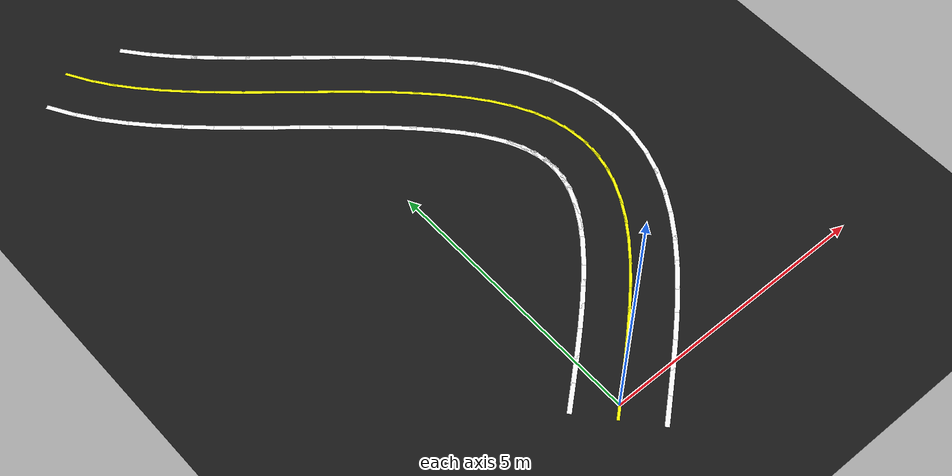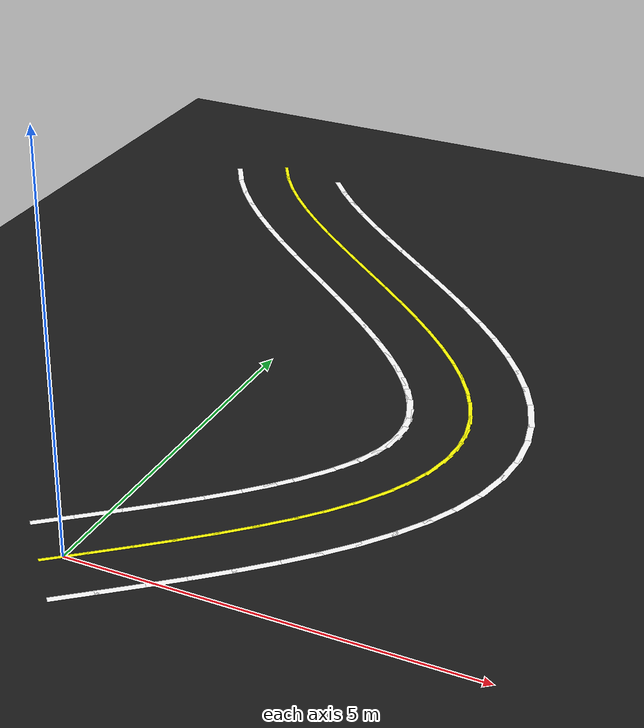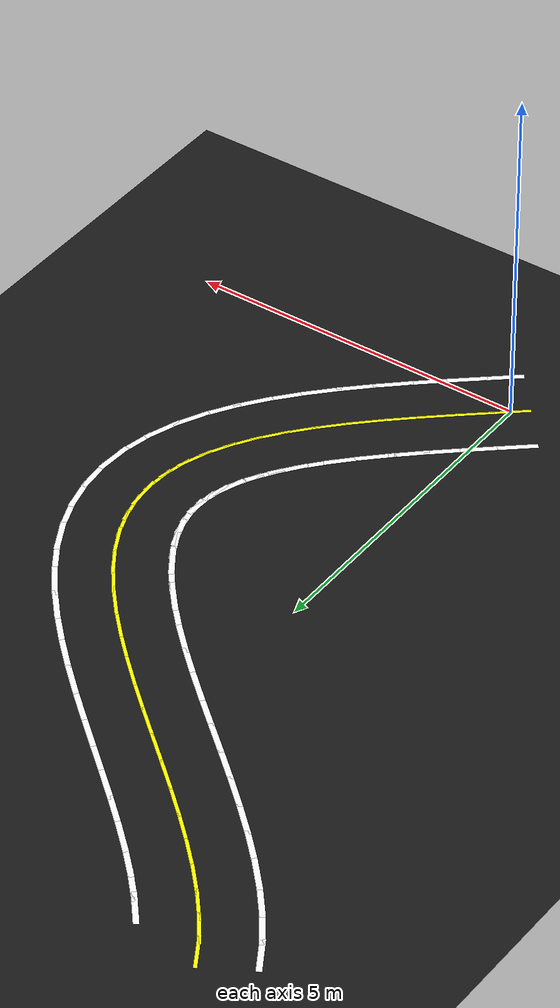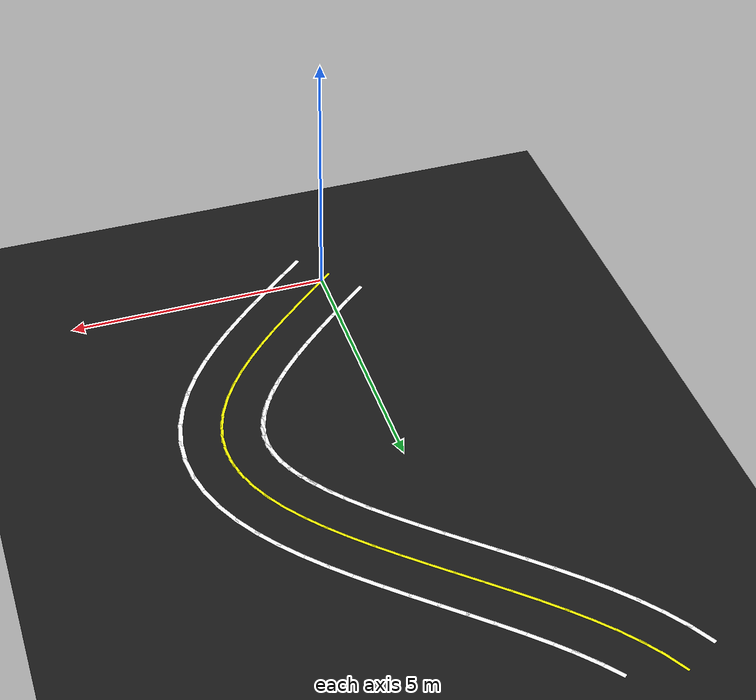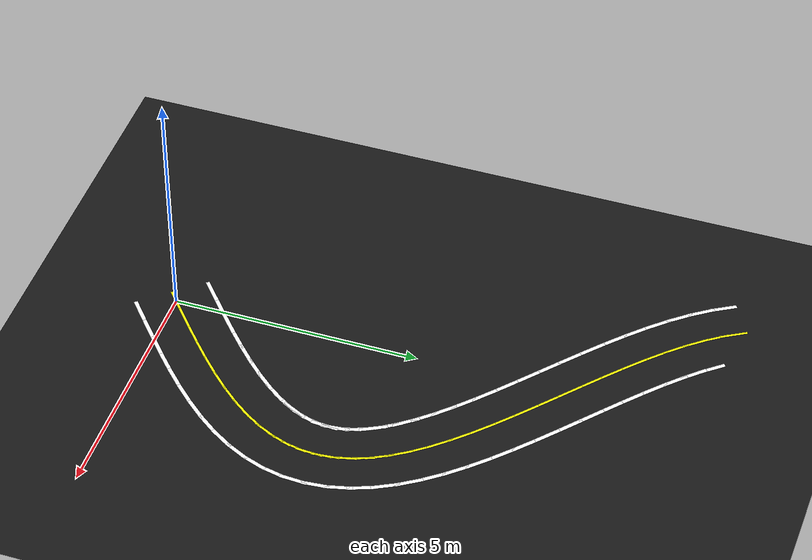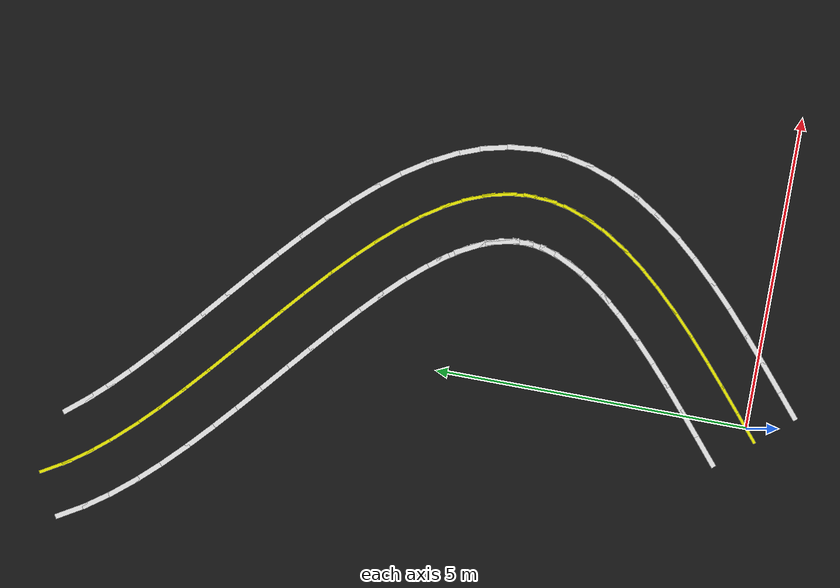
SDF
<sdf version="1.6">
 <world name="double_s_lane_world">
  <model name="ground">
   <static>true</static>
   <link name="link">
    <visual name="v">
     <geometry><plane><normal>0 0 1</normal><size>100 100</size></plane></geometry>
     <material><ambient>0.10 0.10 0.10 1</ambient><diffuse>0.10 0.10 0.10 1</diffuse></material>
    </visual>
    <collision name="c"><geometry><plane><normal>0 0 1</normal><size>100 100</size></plane></geometry></collision>
   </link>
  </model>
  <model name="seg_0000">
   <static>true</static>
   <pose>-0.4853 0.5718 0.002 0 0 0.7038</pose>
   <link name="link">
    <visual name="v">
     <geometry><box><size>0.550 0.080 0.0020</size></box></geometry>
     <material><ambient>1 1 1 1</ambient><diffuse>1 1 1 1</diffuse></material>
    </visual>
   </link>
  </model>
  <model name="seg_0001">
   <static>true</static>
   <pose>0.4853 -0.5718 0.002 0 0 0.7038</pose>
   <link name="link">
    <visual name="v">
     <geometry><box><size>0.550 0.080 0.0020</size></box></geometry>
     <material><ambient>1 1 1 1</ambient><diffuse>1 1 1 1</diffuse></material>
    </visual>
   </link>
  </model>
  <model name="seg_0002">
   <static>true</static>
   <pose>0.0000 0.0000 0.002 0 0 0.7038</pose>
   <link name="link">
    <visual name="v">
     <geometry><box><size>0.550 0.050 0.0020</size></box></geometry>
     <material><ambient>1 1 0 1</ambient><diffuse>1 1 0 1</diffuse></material>
    </visual>
   </link>
  </model>
  <model name="seg_0003">
   <static>true</static>
   <pose>-0.1078 0.8931 0.002 0 0 0.7078</pose>
   <link name="link">
    <visual name="v">
     <geometry><box><size>0.550 0.080 0.0020</size></box></geometry>
     <material><ambient>1 1 1 1</ambient><diffuse>1 1 1 1</diffuse></material>
    </visual>
   </link>
  </model>
  <model name="seg_0004">
   <static>true</static>
   <pose>0.8674 -0.2466 0.002 0 0 0.7078</pose>
   <link name="link">
    <visual name="v">
     <geometry><box><size>0.550 0.080 0.0020</size></box></geometry>
     <material><ambient>1 1 1 1</ambient><diffuse>1 1 1 1</diffuse></material>
    </visual>
   </link>
  </model>
  <model name="seg_0005">
   <static>true</static>
   <pose>0.3798 0.3232 0.002 0 0 0.7078</pose>
   <link name="link">
    <visual name="v">
     <geometry><box><size>0.550 0.050 0.0020</size></box></geometry>
     <material><ambient>1 1 0 1</ambient><diffuse>1 1 0 1</diffuse></material>
    </visual>
   </link>
  </model>
  <model name="seg_0006">
   <static>true</static>
   <pose>0.2589 1.2104 0.002 0 0 0.7199</pose>
   <link name="link">
    <visual name="v">
     <geometry><box><size>0.550 0.080 0.0020</size></box></geometry>
     <material><ambient>1 1 1 1</ambient><diffuse>1 1 1 1</diffuse></material>
    </visual>
   </link>
  </model>
  <model name="seg_0007">
   <static>true</static>
   <pose>1.2479 0.0826 0.002 0 0 0.7199</pose>
   <link name="link">
    <visual name="v">
     <geometry><box><size>0.550 0.080 0.0020</size></box></geometry>
     <material><ambient>1 1 1 1</ambient><diffuse>1 1 1 1</diffuse></material>
    </visual>
   </link>
  </model>
  <model name="seg_0008">
   <static>true</static>
   <pose>0.7534 0.6465 0.002 0 0 0.7199</pose>
   <link name="link">
    <visual name="v">
     <geometry><box><size>0.550 0.050 0.0020</size></box></geometry>
     <material><ambient>1 1 0 1</ambient><diffuse>1 1 0 1</diffuse></material>
    </visual>
   </link>
  </model>
  <model name="seg_0009">
   <static>true</static>
   <pose>0.6089 1.5232 0.002 0 0 0.7407</pose>
   <link name="link">
    <visual name="v">
     <geometry><box><size>0.550 0.080 0.0020</size></box></geometry>
     <material><ambient>1 1 1 1</ambient><diffuse>1 1 1 1</diffuse></material>
    </visual>
   </link>
  </model>
  <model name="seg_0010">
   <static>true</static>
   <pose>1.6211 0.4162 0.002 0 0 0.7407</pose>
   <link name="link">
    <visual name="v">
     <geometry><box><size>0.550 0.080 0.0020</size></box></geometry>
     <material><ambient>1 1 1 1</ambient><diffuse>1 1 1 1</diffuse></material>
    </visual>
   </link>
  </model>
  <model name="seg_0011">
   <static>true</static>
   <pose>1.1150 0.9697 0.002 0 0 0.7407</pose>
   <link name="link">
    <visual name="v">
     <geometry><box><size>0.550 0.050 0.0020</size></box></geometry>
     <material><ambient>1 1 0 1</ambient><diffuse>1 1 0 1</diffuse></material>
    </visual>
   </link>
  </model>
  <model name="seg_0012">
   <static>true</static>
   <pose>0.9360 1.8309 0.002 0 0 0.7709</pose>
   <link name="link">
    <visual name="v">
     <geometry><box><size>0.550 0.080 0.0020</size></box></geometry>
     <material><ambient>1 1 1 1</ambient><diffuse>1 1 1 1</diffuse></material>
    </visual>
   </link>
  </model>
  <model name="seg_0013">
   <static>true</static>
   <pose>1.9812 0.7550 0.002 0 0 0.7709</pose>
   <link name="link">
    <visual name="v">
     <geometry><box><size>0.550 0.080 0.0020</size></box></geometry>
     <material><ambient>1 1 1 1</ambient><diffuse>1 1 1 1</diffuse></material>
    </visual>
   </link>
  </model>
  <model name="seg_0014">
   <static>true</static>
   <pose>1.4586 1.2929 0.002 0 0 0.7709</pose>
   <link name="link">
    <visual name="v">
     <geometry><box><size>0.550 0.050 0.0020</size></box></geometry>
     <material><ambient>1 1 0 1</ambient><diffuse>1 1 0 1</diffuse></material>
    </visual>
   </link>
  </model>
  <model name="seg_0015">
   <static>true</static>
   <pose>1.2346 2.1323 0.002 0 0 0.8117</pose>
   <link name="link">
    <visual name="v">
     <geometry><box><size>0.550 0.080 0.0020</size></box></geometry>
     <material><ambient>1 1 1 1</ambient><diffuse>1 1 1 1</diffuse></material>
    </visual>
   </link>
  </model>
  <model name="seg_0016">
   <static>true</static>
   <pose>2.3228 1.1000 0.002 0 0 0.8117</pose>
   <link name="link">
    <visual name="v">
     <geometry><box><size>0.550 0.080 0.0020</size></box></geometry>
     <material><ambient>1 1 1 1</ambient><diffuse>1 1 1 1</diffuse></material>
    </visual>
   </link>
  </model>
  <model name="seg_0017">
   <static>true</static>
   <pose>1.7787 1.6162 0.002 0 0 0.8117</pose>
   <link name="link">
    <visual name="v">
     <geometry><box><size>0.550 0.050 0.0020</size></box></geometry>
     <material><ambient>1 1 0 1</ambient><diffuse>1 1 0 1</diffuse></material>
    </visual>
   </link>
  </model>
  <model name="seg_0018">
   <static>true</static>
   <pose>1.4995 2.4260 0.002 0 0 0.8648</pose>
   <link name="link">
    <visual name="v">
     <geometry><box><size>0.550 0.080 0.0020</size></box></geometry>
     <material><ambient>1 1 1 1</ambient><diffuse>1 1 1 1</diffuse></material>
    </visual>
   </link>
  </model>
  <model name="seg_0019">
   <static>true</static>
   <pose>2.6410 1.4528 0.002 0 0 0.8648</pose>
   <link name="link">
    <visual name="v">
     <geometry><box><size>0.550 0.080 0.0020</size></box></geometry>
     <material><ambient>1 1 1 1</ambient><diffuse>1 1 1 1</diffuse></material>
    </visual>
   </link>
  </model>
  <model name="seg_0020">
   <static>true</static>
   <pose>2.0702 1.9394 0.002 0 0 0.8648</pose>
   <link name="link">
    <visual name="v">
     <geometry><box><size>0.550 0.050 0.0020</size></box></geometry>
     <material><ambient>1 1 0 1</ambient><diffuse>1 1 0 1</diffuse></material>
    </visual>
   </link>
  </model>
  <model name="seg_0021">
   <static>true</static>
   <pose>1.7264 2.7099 0.002 0 0 0.9319</pose>
   <link name="link">
    <visual name="v">
     <geometry><box><size>0.550 0.080 0.0020</size></box></geometry>
     <material><ambient>1 1 1 1</ambient><diffuse>1 1 1 1</diffuse></material>
    </visual>
   </link>
  </model>
  <model name="seg_0022">
   <static>true</static>
   <pose>2.9305 1.8154 0.002 0 0 0.9319</pose>
   <link name="link">
    <visual name="v">
     <geometry><box><size>0.550 0.080 0.0020</size></box></geometry>
     <material><ambient>1 1 1 1</ambient><diffuse>1 1 1 1</diffuse></material>
    </visual>
   </link>
  </model>
  <model name="seg_0023">
   <static>true</static>
   <pose>2.3284 2.2626 0.002 0 0 0.9319</pose>
   <link name="link">
    <visual name="v">
     <geometry><box><size>0.550 0.050 0.0020</size></box></geometry>
     <material><ambient>1 1 0 1</ambient><diffuse>1 1 0 1</diffuse></material>
    </visual>
   </link>
  </model>
  <model name="seg_0024">
   <static>true</static>
   <pose>1.9121 2.9816 0.002 0 0 1.0150</pose>
   <link name="link">
    <visual name="v">
     <geometry><box><size>0.550 0.080 0.0020</size></box></geometry>
     <material><ambient>1 1 1 1</ambient><diffuse>1 1 1 1</diffuse></material>
    </visual>
   </link>
  </model>
  <model name="seg_0025">
   <static>true</static>
   <pose>3.1863 2.1901 0.002 0 0 1.0150</pose>
   <link name="link">
    <visual name="v">
     <geometry><box><size>0.550 0.080 0.0020</size></box></geometry>
     <material><ambient>1 1 1 1</ambient><diffuse>1 1 1 1</diffuse></material>
    </visual>
   </link>
  </model>
  <model name="seg_0026">
   <static>true</static>
   <pose>2.5492 2.5859 0.002 0 0 1.0150</pose>
   <link name="link">
    <visual name="v">
     <geometry><box><size>0.550 0.050 0.0020</size></box></geometry>
     <material><ambient>1 1 0 1</ambient><diffuse>1 1 0 1</diffuse></material>
    </visual>
   </link>
  </model>
  <model name="seg_0027">
   <static>true</static>
   <pose>2.0552 3.2388 0.002 0 0 1.1157</pose>
   <link name="link">
    <visual name="v">
     <geometry><box><size>0.550 0.080 0.0020</size></box></geometry>
     <material><ambient>1 1 1 1</ambient><diffuse>1 1 1 1</diffuse></material>
    </visual>
   </link>
  </model>
  <model name="seg_0028">
   <static>true</static>
   <pose>3.4025 2.5794 0.002 0 0 1.1157</pose>
   <link name="link">
    <visual name="v">
     <geometry><box><size>0.550 0.080 0.0020</size></box></geometry>
     <material><ambient>1 1 1 1</ambient><diffuse>1 1 1 1</diffuse></material>
    </visual>
   </link>
  </model>
  <model name="seg_0029">
   <static>true</static>
   <pose>2.7289 2.9091 0.002 0 0 1.1157</pose>
   <link name="link">
    <visual name="v">
     <geometry><box><size>0.550 0.050 0.0020</size></box></geometry>
     <material><ambient>1 1 0 1</ambient><diffuse>1 1 0 1</diffuse></material>
    </visual>
   </link>
  </model>
  <model name="seg_0030">
   <static>true</static>
   <pose>2.1568 3.4800 0.002 0 0 1.2343</pose>
   <link name="link">
    <visual name="v">
     <geometry><box><size>0.550 0.080 0.0020</size></box></geometry>
     <material><ambient>1 1 1 1</ambient><diffuse>1 1 1 1</diffuse></material>
    </visual>
   </link>
  </model>
  <model name="seg_0031">
   <static>true</static>
   <pose>3.5726 2.9847 0.002 0 0 1.2343</pose>
   <link name="link">
    <visual name="v">
     <geometry><box><size>0.550 0.080 0.0020</size></box></geometry>
     <material><ambient>1 1 1 1</ambient><diffuse>1 1 1 1</diffuse></material>
    </visual>
   </link>
  </model>
  <model name="seg_0032">
   <static>true</static>
   <pose>2.8647 3.2323 0.002 0 0 1.2343</pose>
   <link name="link">
    <visual name="v">
     <geometry><box><size>0.550 0.050 0.0020</size></box></geometry>
     <material><ambient>1 1 0 1</ambient><diffuse>1 1 0 1</diffuse></material>
    </visual>
   </link>
  </model>
  <model name="seg_0033">
   <static>true</static>
   <pose>2.2196 3.7059 0.002 0 0 1.3690</pose>
   <link name="link">
    <visual name="v">
     <geometry><box><size>0.550 0.080 0.0020</size></box></geometry>
     <material><ambient>1 1 1 1</ambient><diffuse>1 1 1 1</diffuse></material>
    </visual>
   </link>
  </model>
  <model name="seg_0034">
   <static>true</static>
   <pose>3.6892 3.4052 0.002 0 0 1.3690</pose>
   <link name="link">
    <visual name="v">
     <geometry><box><size>0.550 0.080 0.0020</size></box></geometry>
     <material><ambient>1 1 1 1</ambient><diffuse>1 1 1 1</diffuse></material>
    </visual>
   </link>
  </model>
  <model name="seg_0035">
   <static>true</static>
   <pose>2.9544 3.5556 0.002 0 0 1.3690</pose>
   <link name="link">
    <visual name="v">
     <geometry><box><size>0.550 0.050 0.0020</size></box></geometry>
     <material><ambient>1 1 0 1</ambient><diffuse>1 1 0 1</diffuse></material>
    </visual>
   </link>
  </model>
  <model name="seg_0036">
   <static>true</static>
   <pose>2.2478 3.9208 0.002 0 0 1.5148</pose>
   <link name="link">
    <visual name="v">
     <geometry><box><size>0.550 0.080 0.0020</size></box></geometry>
     <material><ambient>1 1 1 1</ambient><diffuse>1 1 1 1</diffuse></material>
    </visual>
   </link>
  </model>
  <model name="seg_0037">
   <static>true</static>
   <pose>3.7454 3.8368 0.002 0 0 1.5148</pose>
   <link name="link">
    <visual name="v">
     <geometry><box><size>0.550 0.080 0.0020</size></box></geometry>
     <material><ambient>1 1 1 1</ambient><diffuse>1 1 1 1</diffuse></material>
    </visual>
   </link>
  </model>
  <model name="seg_0038">
   <static>true</static>
   <pose>2.9966 3.8788 0.002 0 0 1.5148</pose>
   <link name="link">
    <visual name="v">
     <geometry><box><size>0.550 0.050 0.0020</size></box></geometry>
     <material><ambient>1 1 0 1</ambient><diffuse>1 1 0 1</diffuse></material>
    </visual>
   </link>
  </model>
  <model name="seg_0039">
   <static>true</static>
   <pose>2.2438 4.1323 0.002 0 0 1.6639</pose>
   <link name="link">
    <visual name="v">
     <geometry><box><size>0.550 0.080 0.0020</size></box></geometry>
     <material><ambient>1 1 1 1</ambient><diffuse>1 1 1 1</diffuse></material>
    </visual>
   </link>
  </model>
  <model name="seg_0040">
   <static>true</static>
   <pose>3.7373 4.2717 0.002 0 0 1.6639</pose>
   <link name="link">
    <visual name="v">
     <geometry><box><size>0.550 0.080 0.0020</size></box></geometry>
     <material><ambient>1 1 1 1</ambient><diffuse>1 1 1 1</diffuse></material>
    </visual>
   </link>
  </model>
  <model name="seg_0041">
   <static>true</static>
   <pose>2.9906 4.2020 0.002 0 0 1.6639</pose>
   <link name="link">
    <visual name="v">
     <geometry><box><size>0.550 0.050 0.0020</size></box></geometry>
     <material><ambient>1 1 0 1</ambient><diffuse>1 1 0 1</diffuse></material>
    </visual>
   </link>
  </model>
  <model name="seg_0042">
   <static>true</static>
   <pose>2.2073 4.3493 0.002 0 0 1.8076</pose>
   <link name="link">
    <visual name="v">
     <geometry><box><size>0.550 0.080 0.0020</size></box></geometry>
     <material><ambient>1 1 1 1</ambient><diffuse>1 1 1 1</diffuse></material>
    </visual>
   </link>
  </model>
  <model name="seg_0043">
   <static>true</static>
   <pose>3.6655 4.7012 0.002 0 0 1.8076</pose>
   <link name="link">
    <visual name="v">
     <geometry><box><size>0.550 0.080 0.0020</size></box></geometry>
     <material><ambient>1 1 1 1</ambient><diffuse>1 1 1 1</diffuse></material>
    </visual>
   </link>
  </model>
  <model name="seg_0044">
   <static>true</static>
   <pose>2.9364 4.5253 0.002 0 0 1.8076</pose>
   <link name="link">
    <visual name="v">
     <geometry><box><size>0.550 0.050 0.0020</size></box></geometry>
     <material><ambient>1 1 0 1</ambient><diffuse>1 1 0 1</diffuse></material>
    </visual>
   </link>
  </model>
  <model name="seg_0045">
   <static>true</static>
   <pose>2.1352 4.5788 0.002 0 0 1.9386</pose>
   <link name="link">
    <visual name="v">
     <geometry><box><size>0.550 0.080 0.0020</size></box></geometry>
     <material><ambient>1 1 1 1</ambient><diffuse>1 1 1 1</diffuse></material>
    </visual>
   </link>
  </model>
  <model name="seg_0046">
   <static>true</static>
   <pose>3.5348 5.1181 0.002 0 0 1.9386</pose>
   <link name="link">
    <visual name="v">
     <geometry><box><size>0.550 0.080 0.0020</size></box></geometry>
     <material><ambient>1 1 1 1</ambient><diffuse>1 1 1 1</diffuse></material>
    </visual>
   </link>
  </model>
  <model name="seg_0047">
   <static>true</static>
   <pose>2.8350 4.8485 0.002 0 0 1.9386</pose>
   <link name="link">
    <visual name="v">
     <geometry><box><size>0.550 0.050 0.0020</size></box></geometry>
     <material><ambient>1 1 0 1</ambient><diffuse>1 1 0 1</diffuse></material>
    </visual>
   </link>
  </model>
  <model name="seg_0048">
   <static>true</static>
   <pose>2.0234 4.8241 0.002 0 0 2.0528</pose>
   <link name="link">
    <visual name="v">
     <geometry><box><size>0.550 0.080 0.0020</size></box></geometry>
     <material><ambient>1 1 1 1</ambient><diffuse>1 1 1 1</diffuse></material>
    </visual>
   </link>
  </model>
  <model name="seg_0049">
   <static>true</static>
   <pose>3.3525 5.5194 0.002 0 0 2.0528</pose>
   <link name="link">
    <visual name="v">
     <geometry><box><size>0.550 0.080 0.0020</size></box></geometry>
     <material><ambient>1 1 1 1</ambient><diffuse>1 1 1 1</diffuse></material>
    </visual>
   </link>
  </model>
  <model name="seg_0050">
   <static>true</static>
   <pose>2.6880 5.1717 0.002 0 0 2.0528</pose>
   <link name="link">
    <visual name="v">
     <geometry><box><size>0.550 0.050 0.0020</size></box></geometry>
     <material><ambient>1 1 0 1</ambient><diffuse>1 1 0 1</diffuse></material>
    </visual>
   </link>
  </model>
  <model name="seg_0051">
   <static>true</static>
   <pose>1.8696 5.0851 0.002 0 0 2.1490</pose>
   <link name="link">
    <visual name="v">
     <geometry><box><size>0.550 0.080 0.0020</size></box></geometry>
     <material><ambient>1 1 1 1</ambient><diffuse>1 1 1 1</diffuse></material>
    </visual>
   </link>
  </model>
  <model name="seg_0052">
   <static>true</static>
   <pose>3.1258 5.9048 0.002 0 0 2.1490</pose>
   <link name="link">
    <visual name="v">
     <geometry><box><size>0.550 0.080 0.0020</size></box></geometry>
     <material><ambient>1 1 1 1</ambient><diffuse>1 1 1 1</diffuse></material>
    </visual>
   </link>
  </model>
  <model name="seg_0053">
   <static>true</static>
   <pose>2.4977 5.4949 0.002 0 0 2.1490</pose>
   <link name="link">
    <visual name="v">
     <geometry><box><size>0.550 0.050 0.0020</size></box></geometry>
     <material><ambient>1 1 0 1</ambient><diffuse>1 1 0 1</diffuse></material>
    </visual>
   </link>
  </model>
  <model name="seg_0054">
   <static>true</static>
   <pose>1.6734 5.3601 0.002 0 0 2.2279</pose>
   <link name="link">
    <visual name="v">
     <geometry><box><size>0.550 0.080 0.0020</size></box></geometry>
     <material><ambient>1 1 1 1</ambient><diffuse>1 1 1 1</diffuse></material>
    </visual>
   </link>
  </model>
  <model name="seg_0055">
   <static>true</static>
   <pose>2.8611 6.2763 0.002 0 0 2.2279</pose>
   <link name="link">
    <visual name="v">
     <geometry><box><size>0.550 0.080 0.0020</size></box></geometry>
     <material><ambient>1 1 1 1</ambient><diffuse>1 1 1 1</diffuse></material>
    </visual>
   </link>
  </model>
  <model name="seg_0056">
   <static>true</static>
   <pose>2.2672 5.8182 0.002 0 0 2.2279</pose>
   <link name="link">
    <visual name="v">
     <geometry><box><size>0.550 0.050 0.0020</size></box></geometry>
     <material><ambient>1 1 0 1</ambient><diffuse>1 1 0 1</diffuse></material>
    </visual>
   </link>
  </model>
  <model name="seg_0057">
   <static>true</static>
   <pose>1.4367 5.6466 0.002 0 0 2.2913</pose>
   <link name="link">
    <visual name="v">
     <geometry><box><size>0.550 0.080 0.0020</size></box></geometry>
     <material><ambient>1 1 1 1</ambient><diffuse>1 1 1 1</diffuse></material>
    </visual>
   </link>
  </model>
  <model name="seg_0058">
   <static>true</static>
   <pose>2.5639 6.6362 0.002 0 0 2.2913</pose>
   <link name="link">
    <visual name="v">
     <geometry><box><size>0.550 0.080 0.0020</size></box></geometry>
     <material><ambient>1 1 1 1</ambient><diffuse>1 1 1 1</diffuse></material>
    </visual>
   </link>
  </model>
  <model name="seg_0059">
   <static>true</static>
   <pose>2.0003 6.1414 0.002 0 0 2.2913</pose>
   <link name="link">
    <visual name="v">
     <geometry><box><size>0.550 0.050 0.0020</size></box></geometry>
     <material><ambient>1 1 0 1</ambient><diffuse>1 1 0 1</diffuse></material>
    </visual>
   </link>
  </model>
  <model name="seg_0060">
   <static>true</static>
   <pose>1.1629 5.9424 0.002 0 0 2.3412</pose>
   <link name="link">
    <visual name="v">
     <geometry><box><size>0.550 0.080 0.0020</size></box></geometry>
     <material><ambient>1 1 1 1</ambient><diffuse>1 1 1 1</diffuse></material>
    </visual>
   </link>
  </model>
  <model name="seg_0061">
   <static>true</static>
   <pose>2.2394 6.9869 0.002 0 0 2.3412</pose>
   <link name="link">
    <visual name="v">
     <geometry><box><size>0.550 0.080 0.0020</size></box></geometry>
     <material><ambient>1 1 1 1</ambient><diffuse>1 1 1 1</diffuse></material>
    </visual>
   </link>
  </model>
  <model name="seg_0062">
   <static>true</static>
   <pose>1.7012 6.4646 0.002 0 0 2.3412</pose>
   <link name="link">
    <visual name="v">
     <geometry><box><size>0.550 0.050 0.0020</size></box></geometry>
     <material><ambient>1 1 0 1</ambient><diffuse>1 1 0 1</diffuse></material>
    </visual>
   </link>
  </model>
  <model name="seg_0063">
   <static>true</static>
   <pose>0.8567 6.2455 0.002 0 0 2.3792</pose>
   <link name="link">
    <visual name="v">
     <geometry><box><size>0.550 0.080 0.0020</size></box></geometry>
     <material><ambient>1 1 1 1</ambient><diffuse>1 1 1 1</diffuse></material>
    </visual>
   </link>
  </model>
  <model name="seg_0064">
   <static>true</static>
   <pose>1.8927 7.3303 0.002 0 0 2.3792</pose>
   <link name="link">
    <visual name="v">
     <geometry><box><size>0.550 0.080 0.0020</size></box></geometry>
     <material><ambient>1 1 1 1</ambient><diffuse>1 1 1 1</diffuse></material>
    </visual>
   </link>
  </model>
  <model name="seg_0065">
   <static>true</static>
   <pose>1.3747 6.7879 0.002 0 0 2.3792</pose>
   <link name="link">
    <visual name="v">
     <geometry><box><size>0.550 0.050 0.0020</size></box></geometry>
     <material><ambient>1 1 0 1</ambient><diffuse>1 1 0 1</diffuse></material>
    </visual>
   </link>
  </model>
  <model name="seg_0066">
   <static>true</static>
   <pose>0.5233 6.5546 0.002 0 0 2.4070</pose>
   <link name="link">
    <visual name="v">
     <geometry><box><size>0.550 0.080 0.0020</size></box></geometry>
     <material><ambient>1 1 1 1</ambient><diffuse>1 1 1 1</diffuse></material>
    </visual>
   </link>
  </model>
  <model name="seg_0067">
   <static>true</static>
   <pose>1.5288 7.6677 0.002 0 0 2.4070</pose>
   <link name="link">
    <visual name="v">
     <geometry><box><size>0.550 0.080 0.0020</size></box></geometry>
     <material><ambient>1 1 1 1</ambient><diffuse>1 1 1 1</diffuse></material>
    </visual>
   </link>
  </model>
  <model name="seg_0068">
   <static>true</static>
   <pose>1.0261 7.1111 0.002 0 0 2.4070</pose>
   <link name="link">
    <visual name="v">
     <geometry><box><size>0.550 0.050 0.0020</size></box></geometry>
     <material><ambient>1 1 0 1</ambient><diffuse>1 1 0 1</diffuse></material>
    </visual>
   </link>
  </model>
  <model name="seg_0069">
   <static>true</static>
   <pose>0.1686 6.8686 0.002 0 0 2.4255</pose>
   <link name="link">
    <visual name="v">
     <geometry><box><size>0.550 0.080 0.0020</size></box></geometry>
     <material><ambient>1 1 1 1</ambient><diffuse>1 1 1 1</diffuse></material>
    </visual>
   </link>
  </model>
  <model name="seg_0070">
   <static>true</static>
   <pose>1.1533 8.0001 0.002 0 0 2.4255</pose>
   <link name="link">
    <visual name="v">
     <geometry><box><size>0.550 0.080 0.0020</size></box></geometry>
     <material><ambient>1 1 1 1</ambient><diffuse>1 1 1 1</diffuse></material>
    </visual>
   </link>
  </model>
  <model name="seg_0071">
   <static>true</static>
   <pose>0.6609 7.4343 0.002 0 0 2.4255</pose>
   <link name="link">
    <visual name="v">
     <geometry><box><size>0.550 0.050 0.0020</size></box></geometry>
     <material><ambient>1 1 0 1</ambient><diffuse>1 1 0 1</diffuse></material>
    </visual>
   </link>
  </model>
  <model name="seg_0072">
   <static>true</static>
   <pose>-0.2015 7.1869 0.002 0 0 2.4355</pose>
   <link name="link">
    <visual name="v">
     <geometry><box><size>0.550 0.080 0.0020</size></box></geometry>
     <material><ambient>1 1 1 1</ambient><diffuse>1 1 1 1</diffuse></material>
    </visual>
   </link>
  </model>
  <model name="seg_0073">
   <static>true</static>
   <pose>0.7718 8.3283 0.002 0 0 2.4355</pose>
   <link name="link">
    <visual name="v">
     <geometry><box><size>0.550 0.080 0.0020</size></box></geometry>
     <material><ambient>1 1 1 1</ambient><diffuse>1 1 1 1</diffuse></material>
    </visual>
   </link>
  </model>
  <model name="seg_0074">
   <static>true</static>
   <pose>0.2852 7.7576 0.002 0 0 2.4355</pose>
   <link name="link">
    <visual name="v">
     <geometry><box><size>0.550 0.050 0.0020</size></box></geometry>
     <material><ambient>1 1 0 1</ambient><diffuse>1 1 0 1</diffuse></material>
    </visual>
   </link>
  </model>
  <model name="seg_0075">
   <static>true</static>
   <pose>-0.5807 7.5091 0.002 0 0 2.4375</pose>
   <link name="link">
    <visual name="v">
     <geometry><box><size>0.550 0.080 0.0020</size></box></geometry>
     <material><ambient>1 1 1 1</ambient><diffuse>1 1 1 1</diffuse></material>
    </visual>
   </link>
  </model>
  <model name="seg_0076">
   <static>true</static>
   <pose>0.3903 8.6525 0.002 0 0 2.4375</pose>
   <link name="link">
    <visual name="v">
     <geometry><box><size>0.550 0.080 0.0020</size></box></geometry>
     <material><ambient>1 1 1 1</ambient><diffuse>1 1 1 1</diffuse></material>
    </visual>
   </link>
  </model>
  <model name="seg_0077">
   <static>true</static>
   <pose>-0.0952 8.0808 0.002 0 0 2.4375</pose>
   <link name="link">
    <visual name="v">
     <geometry><box><size>0.550 0.050 0.0020</size></box></geometry>
     <material><ambient>1 1 0 1</ambient><diffuse>1 1 0 1</diffuse></material>
    </visual>
   </link>
  </model>
  <model name="seg_0078">
   <static>true</static>
   <pose>-0.9629 7.8353 0.002 0 0 2.4315</pose>
   <link name="link">
    <visual name="v">
     <geometry><box><size>0.550 0.080 0.0020</size></box></geometry>
     <material><ambient>1 1 1 1</ambient><diffuse>1 1 1 1</diffuse></material>
    </visual>
   </link>
  </model>
  <model name="seg_0079">
   <static>true</static>
   <pose>0.0149 8.9728 0.002 0 0 2.4315</pose>
   <link name="link">
    <visual name="v">
     <geometry><box><size>0.550 0.080 0.0020</size></box></geometry>
     <material><ambient>1 1 1 1</ambient><diffuse>1 1 1 1</diffuse></material>
    </visual>
   </link>
  </model>
  <model name="seg_0080">
   <static>true</static>
   <pose>-0.4740 8.4040 0.002 0 0 2.4315</pose>
   <link name="link">
    <visual name="v">
     <geometry><box><size>0.550 0.050 0.0020</size></box></geometry>
     <material><ambient>1 1 0 1</ambient><diffuse>1 1 0 1</diffuse></material>
    </visual>
   </link>
  </model>
  <model name="seg_0081">
   <static>true</static>
   <pose>-1.3421 8.1655 0.002 0 0 2.4173</pose>
   <link name="link">
    <visual name="v">
     <geometry><box><size>0.550 0.080 0.0020</size></box></geometry>
     <material><ambient>1 1 1 1</ambient><diffuse>1 1 1 1</diffuse></material>
    </visual>
   </link>
  </model>
  <model name="seg_0082">
   <static>true</static>
   <pose>-0.3483 9.2890 0.002 0 0 2.4173</pose>
   <link name="link">
    <visual name="v">
     <geometry><box><size>0.550 0.080 0.0020</size></box></geometry>
     <material><ambient>1 1 1 1</ambient><diffuse>1 1 1 1</diffuse></material>
    </visual>
   </link>
  </model>
  <model name="seg_0083">
   <static>true</static>
   <pose>-0.8452 8.7273 0.002 0 0 2.4173</pose>
   <link name="link">
    <visual name="v">
     <geometry><box><size>0.550 0.050 0.0020</size></box></geometry>
     <material><ambient>1 1 0 1</ambient><diffuse>1 1 0 1</diffuse></material>
    </visual>
   </link>
  </model>
  <model name="seg_0084">
   <static>true</static>
   <pose>-1.7125 8.5004 0.002 0 0 2.3943</pose>
   <link name="link">
    <visual name="v">
     <geometry><box><size>0.550 0.080 0.0020</size></box></geometry>
     <material><ambient>1 1 1 1</ambient><diffuse>1 1 1 1</diffuse></material>
    </visual>
   </link>
  </model>
  <model name="seg_0085">
   <static>true</static>
   <pose>-0.6930 9.6007 0.002 0 0 2.3943</pose>
   <link name="link">
    <visual name="v">
     <geometry><box><size>0.550 0.080 0.0020</size></box></geometry>
     <material><ambient>1 1 1 1</ambient><diffuse>1 1 1 1</diffuse></material>
    </visual>
   </link>
  </model>
  <model name="seg_0086">
   <static>true</static>
   <pose>-1.2028 9.0505 0.002 0 0 2.3943</pose>
   <link name="link">
    <visual name="v">
     <geometry><box><size>0.550 0.050 0.0020</size></box></geometry>
     <material><ambient>1 1 0 1</ambient><diffuse>1 1 0 1</diffuse></material>
    </visual>
   </link>
  </model>
  <model name="seg_0087">
   <static>true</static>
   <pose>-2.0685 8.8406 0.002 0 0 2.3616</pose>
   <link name="link">
    <visual name="v">
     <geometry><box><size>0.550 0.080 0.0020</size></box></geometry>
     <material><ambient>1 1 1 1</ambient><diffuse>1 1 1 1</diffuse></material>
    </visual>
   </link>
  </model>
  <model name="seg_0088">
   <static>true</static>
   <pose>-1.0136 9.9069 0.002 0 0 2.3616</pose>
   <link name="link">
    <visual name="v">
     <geometry><box><size>0.550 0.080 0.0020</size></box></geometry>
     <material><ambient>1 1 1 1</ambient><diffuse>1 1 1 1</diffuse></material>
    </visual>
   </link>
  </model>
  <model name="seg_0089">
   <static>true</static>
   <pose>-1.5410 9.3737 0.002 0 0 2.3616</pose>
   <link name="link">
    <visual name="v">
     <geometry><box><size>0.550 0.050 0.0020</size></box></geometry>
     <material><ambient>1 1 0 1</ambient><diffuse>1 1 0 1</diffuse></material>
    </visual>
   </link>
  </model>
  <model name="seg_0090">
   <static>true</static>
   <pose>-2.4048 9.1874 0.002 0 0 2.3178</pose>
   <link name="link">
    <visual name="v">
     <geometry><box><size>0.550 0.080 0.0020</size></box></geometry>
     <material><ambient>1 1 1 1</ambient><diffuse>1 1 1 1</diffuse></material>
    </visual>
   </link>
  </model>
  <model name="seg_0091">
   <static>true</static>
   <pose>-1.3042 10.2066 0.002 0 0 2.3178</pose>
   <link name="link">
    <visual name="v">
     <geometry><box><size>0.550 0.080 0.0020</size></box></geometry>
     <material><ambient>1 1 1 1</ambient><diffuse>1 1 1 1</diffuse></material>
    </visual>
   </link>
  </model>
  <model name="seg_0092">
   <static>true</static>
   <pose>-1.8545 9.6970 0.002 0 0 2.3178</pose>
   <link name="link">
    <visual name="v">
     <geometry><box><size>0.550 0.050 0.0020</size></box></geometry>
     <material><ambient>1 1 0 1</ambient><diffuse>1 1 0 1</diffuse></material>
    </visual>
   </link>
  </model>
  <model name="seg_0093">
   <static>true</static>
   <pose>-2.7162 9.5424 0.002 0 0 2.2614</pose>
   <link name="link">
    <visual name="v">
     <geometry><box><size>0.550 0.080 0.0020</size></box></geometry>
     <material><ambient>1 1 1 1</ambient><diffuse>1 1 1 1</diffuse></material>
    </visual>
   </link>
  </model>
  <model name="seg_0094">
   <static>true</static>
   <pose>-1.5600 10.4980 0.002 0 0 2.2614</pose>
   <link name="link">
    <visual name="v">
     <geometry><box><size>0.550 0.080 0.0020</size></box></geometry>
     <material><ambient>1 1 1 1</ambient><diffuse>1 1 1 1</diffuse></material>
    </visual>
   </link>
  </model>
  <model name="seg_0095">
   <static>true</static>
   <pose>-2.1381 10.0202 0.002 0 0 2.2614</pose>
   <link name="link">
    <visual name="v">
     <geometry><box><size>0.550 0.050 0.0020</size></box></geometry>
     <material><ambient>1 1 0 1</ambient><diffuse>1 1 0 1</diffuse></material>
    </visual>
   </link>
  </model>
  <model name="seg_0096">
   <static>true</static>
   <pose>-2.9978 9.9078 0.002 0 0 2.1905</pose>
   <link name="link">
    <visual name="v">
     <geometry><box><size>0.550 0.080 0.0020</size></box></geometry>
     <material><ambient>1 1 1 1</ambient><diffuse>1 1 1 1</diffuse></material>
    </visual>
   </link>
  </model>
  <model name="seg_0098">
   <static>true</static>
   <pose>-2.3873 10.3434 0.002 0 0 2.1905</pose>
   <link name="link">
    <visual name="v">
     <geometry><box><size>0.550 0.050 0.0020</size></box></geometry>
     <material><ambient>1 1 0 1</ambient><diffuse>1 1 0 1</diffuse></material>
    </visual>
   </link>
  </model>
  <model name="seg_0099">
   <static>true</static>
   <pose>-3.2443 10.2860 0.002 0 0 2.1031</pose>
   <link name="link">
    <visual name="v">
     <geometry><box><size>0.550 0.080 0.0020</size></box></geometry>
     <material><ambient>1 1 1 1</ambient><diffuse>1 1 1 1</diffuse></material>
    </visual>
   </link>
  </model>
  <model name="seg_0101">
   <static>true</static>
   <pose>-2.5981 10.6667 0.002 0 0 2.1031</pose>
   <link name="link">
    <visual name="v">
     <geometry><box><size>0.550 0.050 0.0020</size></box></geometry>
     <material><ambient>1 1 0 1</ambient><diffuse>1 1 0 1</diffuse></material>
    </visual>
   </link>
  </model>
 </world>
</sdf>
